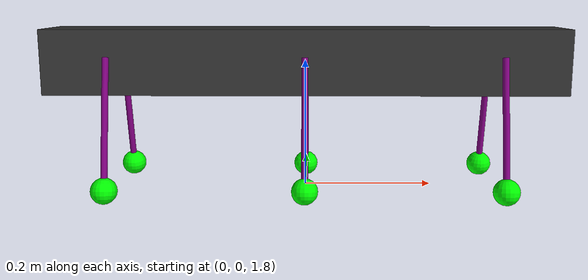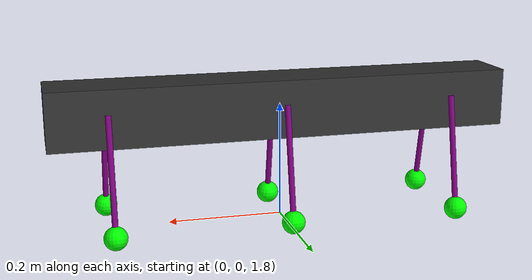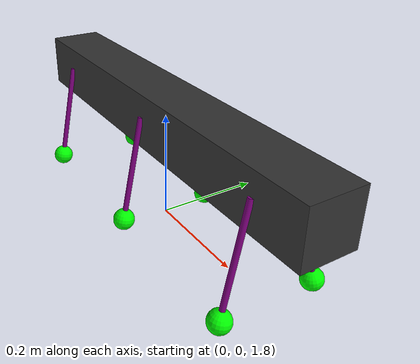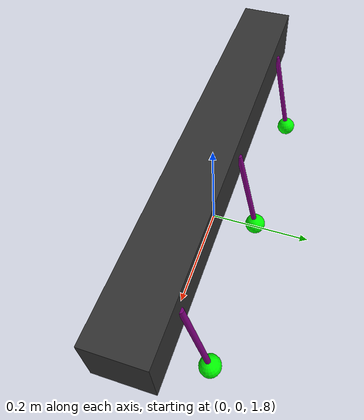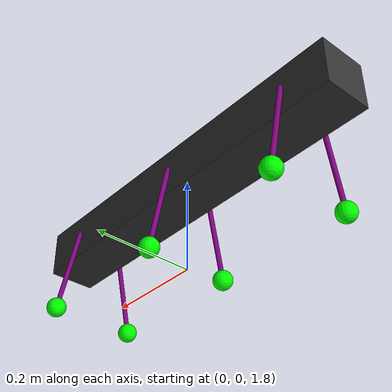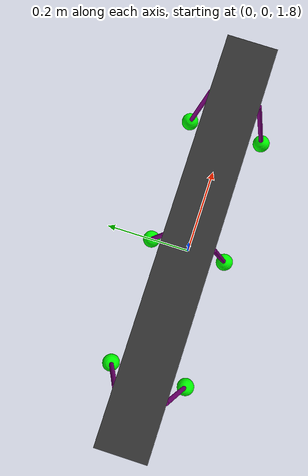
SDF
<?xml version="1.0" ?>
<sdf version="1.6">
<!--Copyright 2016-2022 The FEAGI Authors. All Rights Reserved.-->

<!--Licensed under the Apache License, Version 2.0 (the "License");-->
<!--you may not use this file except in compliance with the License.-->
<!--You may obtain a copy of the License at-->

<!--    http://www.apache.org/licenses/LICENSE-2.0-->

<!--Unless required by applicable law or agreed to in writing, software-->
<!--distributed under the License is distributed on an "AS IS" BASIS,-->
<!--WITHOUT WARRANTIES OR CONDITIONS OF ANY KIND, either express or implied.-->
<!--See the License for the specific language governing permissions and-->
<!--limitations under the License.-->

      <model name="stick-bot">
          <pose>0 0 2 0 0 0</pose>
          <link name="chassis">
              <mass>10</mass>
              <visual name="visual">
                  <geometry>
                      <box>
                          <size>0.8 0.1 0.1</size>
                      </box>
                  </geometry>
                  <material>
                    <diffuse>0.2 0.2 0.2 1</diffuse>
                    <pbr>
                        <specular>
                          <albedo_map>material/abstract_color.jpeg</albedo_map>
                          <specular_map>material/abstract_color.jpeg</specular_map>
                        </specular>
                    </pbr>
                  </material>
              </visual>
              <collision name="collision">
                    <geometry>
                      <box>
                          <size>0.8 0.1 0.2</size>
                      </box>
                    </geometry>
              </collision>
          </link>

          <link name="leg_one">
            <pose relative_to='chassis'>-0.3 0.07 -0.09 0.2 0 0</pose>
            <mass>1</mass>
            <visual name='visual'>
              <geometry>
                <cylinder>
                  <radius>0.005</radius>
                  <length>0.2</length>
                </cylinder>
              </geometry>
              <material>
                <ambient>0.8 0.0 0.5 0.0</ambient>
                <diffuse>0.5 0.0 0.5 1</diffuse>
                <specular>0.2 0.3 0.4 0.5</specular>
              </material>
            </visual>
            <collision name='collision'>
              <geometry>
                <cylinder>
                  <radius>0.005</radius>
                  <length>0.2</length>
                </cylinder>
              </geometry>
            </collision>
          </link>

            <link name="leg_two">
            <pose relative_to='chassis'>-0.3 -0.07 -0.09 -0.2 0 0</pose>
            <mass>1</mass>
            <visual name='visual'>
              <geometry>
                <cylinder>
                  <radius>0.005</radius>
                  <length>0.2</length>
                </cylinder>
              </geometry>
              <material>
                <ambient>0.8 0.0 0.5 0.0</ambient>
                <diffuse>0.5 0.0 0.5 1</diffuse>
                <specular>0.2 0.3 0.4 0.5</specular>
              </material>
            </visual>
            <collision name='collision'>
              <geometry>
                <cylinder>
                  <radius>0.005</radius>
                  <length>0.2</length>
                </cylinder>
              </geometry>
            </collision>
          </link>

            <link name="leg_three">
            <pose relative_to='chassis'>0 0.07 -0.09 0.2 0 0</pose>
            <mass>1</mass>
            <visual name='visual'>
              <geometry>
                <cylinder>
                  <radius>0.005</radius>
                  <length>0.2</length>
                </cylinder>
              </geometry>
              <material>
                <ambient>0.8 0.0 0.5 0.0</ambient>
                <diffuse>0.5 0.0 0.5 1</diffuse>
                <specular>0.2 0.3 0.4 0.5</specular>
              </material>
            </visual>
            <collision name='collision'>
              <geometry>
                <cylinder>
                  <radius>0.005</radius>
                  <length>0.2</length>
                </cylinder>
              </geometry>
            </collision>
          </link>

            <link name="leg_four">
            <pose relative_to='chassis'>0 -0.07 -0.09 -0.2 0 0</pose>
            <mass>1</mass>
            <visual name='visual'>
              <geometry>
                <cylinder>
                  <radius>0.005</radius>
                  <length>0.2</length>
                </cylinder>
              </geometry>
              <material>
                <ambient>0.8 0.0 0.5 0.0</ambient>
                <diffuse>0.5 0.0 0.5 1</diffuse>
                <specular>0.2 0.3 0.4 0.5</specular>
              </material>
            </visual>
            <collision name='collision'>
              <geometry>
                <cylinder>
                  <radius>0.005</radius>
                  <length>0.2</length>
                </cylinder>
              </geometry>
            </collision>
          </link>

           <link name="leg_five">
            <pose relative_to='chassis'>0.3 0.07 -0.09 0.2 0 0</pose>
            <mass>1</mass>
            <visual name='visual'>
              <geometry>
                <cylinder>
                  <radius>0.005</radius>
                  <length>0.2</length>
                </cylinder>
              </geometry>
              <material>
                <ambient>0.8 0.0 0.5 0.0</ambient>
                <diffuse>0.5 0.0 0.5 1</diffuse>
                <specular>0.2 0.3 0.4 0.5</specular>
              </material>
            </visual>
            <collision name='collision'>
              <geometry>
                <cylinder>
                  <radius>0.005</radius>
                  <length>0.2</length>
                </cylinder>
              </geometry>
            </collision>
          </link>

            <link name="leg_six">
            <pose relative_to='chassis'>0.3 -0.07 -0.09 -0.2 0 0</pose>
            <mass>1</mass>
            <visual name='visual'>
              <geometry>
                <cylinder>
                  <radius>0.005</radius>
                  <length>0.2</length>
                </cylinder>
              </geometry>
              <material>
                <ambient>0.8 0.0 0.5 0.0</ambient>
                <diffuse>0.5 0.0 0.5 1</diffuse>
                <specular>0.2 0.3 0.4 0.5</specular>
              </material>
            </visual>
            <collision name='collision'>
              <geometry>
                <cylinder>
                  <radius>0.005</radius>
                  <length>0.2</length>
                </cylinder>
              </geometry>
            </collision>
          </link>

          <link name="foot_one">
              <pose relative_to="leg_one">0 0 -0.1 0 0 0</pose>
              <mass>1</mass>
              <visual name="visual">
                  <geometry>
                      <sphere>
                          <radius>0.02</radius>
                      </sphere>
                  </geometry>
                  <material>
                    <ambient>0 1.0 0 1</ambient>
                    <diffuse>0 1.0 0 1</diffuse>
                    <specular>0.0 1.0 0.0 1</specular>
                  </material>
              </visual>
              <collision name="collision">
                  <geometry>
                      <sphere>
                          <radius>0.02</radius>
                      </sphere>
                  </geometry>
              </collision>
          </link>

          <link name="foot_two">
              <pose relative_to="leg_two">0 0 -0.1 0 0 0</pose>
              <mass>1</mass>
              <visual name="visual">
                  <geometry>
                      <sphere>
                          <radius>0.02</radius>
                      </sphere>
                  </geometry>
                  <material>
                    <ambient>0 1.0 0 1</ambient>
                    <diffuse>0 1.0 0 1</diffuse>
                    <specular>0.0 1.0 0.0 1</specular>
                  </material>
              </visual>
              <collision name="collision">
                  <geometry>
                      <sphere>
                          <radius>0.02</radius>
                      </sphere>
                  </geometry>
              </collision>
          </link>

          <link name="foot_three">
              <pose relative_to="leg_three">0 0 -0.1 0 0 0</pose>
              <mass>1</mass>
              <visual name="visual">
                  <geometry>
                      <sphere>
                          <radius>0.02</radius>
                      </sphere>
                  </geometry>
                  <material>
                    <ambient>0 1.0 0 1</ambient>
                    <diffuse>0 1.0 0 1</diffuse>
                    <specular>0.0 1.0 0.0 1</specular>
                  </material>
              </visual>
              <collision name="collision">
                  <geometry>
                      <sphere>
                          <radius>0.02</radius>
                      </sphere>
                  </geometry>
              </collision>
          </link>
          <link name="foot_four">
              <pose relative_to="leg_four">0 0 -0.1 0 0 0</pose>
              <mass>1</mass>
              <visual name="visual">
                  <geometry>
                      <sphere>
                          <radius>0.02</radius>
                      </sphere>
                  </geometry>
                  <material>
                    <ambient>0 1.0 0 1</ambient>
                    <diffuse>0 1.0 0 1</diffuse>
                    <specular>0.0 1.0 0.0 1</specular>
                  </material>
              </visual>
              <collision name="collision">
                  <geometry>
                      <sphere>
                          <radius>0.02</radius>
                      </sphere>
                  </geometry>
              </collision>
          </link>
          <link name="foot_five">
              <pose relative_to="leg_five">0 0 -0.1 0 0 0</pose>
              <mass>1</mass>
              <visual name="visual">
                  <geometry>
                      <sphere>
                          <radius>0.02</radius>
                      </sphere>
                  </geometry>
                  <material>
                    <ambient>0 1.0 0 1</ambient>
                    <diffuse>0 1.0 0 1</diffuse>
                    <specular>0.0 1.0 0.0 1</specular>
                  </material>
              </visual>
              <collision name="collision">
                  <geometry>
                      <sphere>
                          <radius>0.02</radius>
                      </sphere>
                  </geometry>
              </collision>
          </link>

          <link name="foot_six">
              <pose relative_to="leg_six">0 0 -0.1 0 0 0</pose>
              <mass>1</mass>
              <visual name="visual">
                  <geometry>
                      <sphere>
                          <radius>0.02</radius>
                      </sphere>
                  </geometry>
                  <material>
                    <ambient>0 1.0 0 1</ambient>
                    <diffuse>0 1.0 0 1</diffuse>
                    <specular>0.0 1.0 0.0 1</specular>
                  </material>
              </visual>
              <collision name="collision">
                  <geometry>
                      <sphere>
                          <radius>0.02</radius>
                      </sphere>
                  </geometry>
              </collision>
          </link>

       <joint name='leg_one_joint' type='revolute'>
            <parent>chassis</parent>
            <child>leg_one</child>
            <axis>
              <xyz>0 1 0</xyz>
              <limit>
                <lower>-0.5</lower>
                <upper>0.5</upper>
              </limit>
            </axis>
          </joint>
        <plugin
          filename="ignition-gazebo-joint-position-controller-system"
          name="ignition::gazebo::systems::JointPositionController">
          <joint_name>leg_one_joint</joint_name>
                <topic>S0</topic>
        </plugin>

        <joint name='leg_two_joint' type='revolute'>
            <parent>chassis</parent>
            <child>leg_two</child>
            <axis>
              <xyz>0 1 0</xyz>
              <limit>
                <lower>-0.5</lower>
                <upper>0.5</upper>
              </limit>
            </axis>
        </joint>
    <plugin
          filename="ignition-gazebo-joint-position-controller-system"
          name="ignition::gazebo::systems::JointPositionController">
          <joint_name>leg_two_joint</joint_name>
            <topic>S1</topic>
    </plugin>

        <joint name='leg_three_joint' type='revolute'>
            <parent>chassis</parent>
            <child>leg_three</child>
            <axis>
              <xyz>0 1 0</xyz>
              <limit>
                <lower>-0.5</lower>
                <upper>0.5</upper>
              </limit>
            </axis>
        </joint>
    <plugin
          filename="ignition-gazebo-joint-position-controller-system"
          name="ignition::gazebo::systems::JointPositionController">
          <joint_name>leg_three_joint</joint_name>
            <topic>S2</topic>
    </plugin>
        <joint name='leg_four_joint' type='revolute'>
            <parent>chassis</parent>
            <child>leg_four</child>
            <axis>
              <xyz>0 1 0</xyz>
              <limit>
                <lower>-0.5</lower>
                <upper>0.5</upper>
              </limit>
            </axis>
        </joint>
    <plugin
          filename="ignition-gazebo-joint-position-controller-system"
          name="ignition::gazebo::systems::JointPositionController">
          <joint_name>leg_four_joint</joint_name>
            <topic>S3</topic>
    </plugin>
        <joint name='leg_five_joint' type='revolute'>
            <parent>chassis</parent>
            <child>leg_five</child>
            <axis>
              <xyz>0 1 0</xyz>
              <limit>
                <lower>-0.5</lower>
                <upper>0.5</upper>
              </limit>
            </axis>
        </joint>
    <plugin
          filename="ignition-gazebo-joint-position-controller-system"
          name="ignition::gazebo::systems::JointPositionController">
          <joint_name>leg_five_joint</joint_name>
            <topic>S4</topic>
    </plugin>

        <joint name='leg_six_joint' type='revolute'>
            <parent>chassis</parent>
            <child>leg_six</child>
            <axis>
              <xyz>0 1 0</xyz>
              <limit>
                <lower>-0.5</lower>
                <upper>0.5</upper>
              </limit>
            </axis>
        </joint>
    <plugin
          filename="ignition-gazebo-joint-position-controller-system"
          name="ignition::gazebo::systems::JointPositionController">
          <joint_name>leg_six_joint</joint_name>
            <topic>S5</topic>
    </plugin>

      <joint name='foot_one_joint' type='fixed'>
        <parent>leg_one</parent>
        <child>foot_one</child>
      </joint>
      <joint name='foot_two_joint' type='fixed'>
        <parent>leg_two</parent>
        <child>foot_two</child>
      </joint>

      <joint name='foot_three_joint' type='fixed'>
        <parent>leg_three</parent>
        <child>foot_three</child>
      </joint>

        <joint name='foot_four_joint' type='fixed'>
        <parent>leg_four</parent>
        <child>foot_four</child>
      </joint>
      <joint name='foot_five_joint' type='fixed'>
        <parent>leg_five</parent>
        <child>foot_five</child>
      </joint>
      <joint name='foot_six_joint' type='fixed'>
        <parent>leg_six</parent>
        <child>foot_six</child>
      </joint>

    </model>
</sdf>
